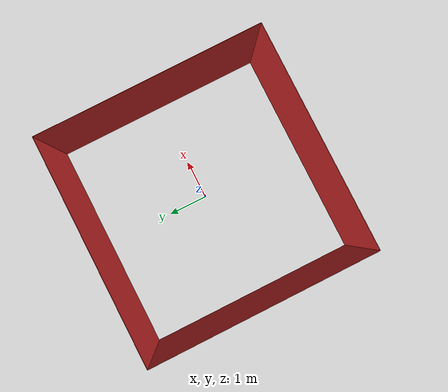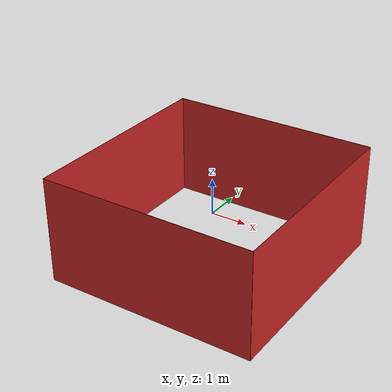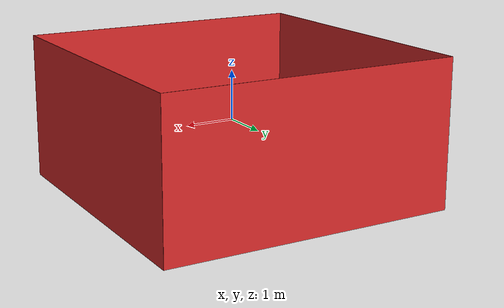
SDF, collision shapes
<sdf version='1.5'>
    <!-- Draw Circle -->
    <model name='ros_symbol'>
      <static>1</static>
      <link name='symbol'>

      <visual name='obs_bucket'>
      <pose>2 2 0 0 0 0</pose>
        <geometry>
          <mesh>
            <uri>model://turtlebot3_world/meshes/aws_robomaker_warehouse_Bucket_01_visual.DAE</uri>
          </mesh>
        </geometry>
      </visual>

      <visual name="obs_clutter_d1">
      <pose>-2 -2 -0.319559 0 0 0</pose>
	 <geometry>
       <mesh>
          <uri>model://turtlebot3_world/meshes/aws_robomaker_warehouse_ClutteringD_01_visual.DAE</uri>
        </mesh>
        </geometry>
	</visual>

	<visual name="obs_trash">
	<pose>-1 1.8 0 0 0 0</pose>
	 <geometry>
          <mesh>
            <uri>model://turtlebot3_world/meshes/aws_robomaker_warehouse_TrashCanC_01_visual.DAE</uri>
          </mesh>
        </geometry>
      <meta> <layer> 1 </layer></meta>
	</visual>

	<visual name="obs_clutter_c1">
	<pose>1 -1.8 0 0 0 0</pose>
	    <geometry>
          <mesh>
            <uri>model://turtlebot3_world/meshes/aws_robomaker_warehouse_ClutteringC_01_visual.DAE</uri>
          </mesh>
        </geometry>
      </visual>

      <visual name="visual">
      <pose>2 0 0 0 0 0</pose>
	 <geometry>
          <mesh>
            <uri>model://turtlebot3_world/meshes/aws_robomaker_warehouse_PalletJackB_01_visual.DAE</uri>
          </mesh>
        </geometry>
	</visual>

      	<visual name='goal_1'>
          <pose>-2 2 0 0 0 0</pose>
          <geometry>
            <cylinder>
              <radius>0.08</radius>
              <length>0.01</length>
            </cylinder>
          </geometry>
          <material>
            <script>
              <uri>file://media/materials/scripts/gazebo.material</uri>
              <name>Gazebo/Red</name>
            </script>
          </material>
        </visual>

        <visual name='goal_2'>
          <pose>-0.1 -0.7 0 0 0 0</pose>
          <geometry>
            <cylinder>
              <radius>0.08</radius>
              <length>0.01</length>
            </cylinder>
          </geometry>
          <material>
            <script>
              <uri>file://media/materials/scripts/gazebo.material</uri>
              <name>Gazebo/Red</name>
            </script>
          </material>
        </visual>

        <visual name='goal_3'>
          <pose>-1 -1 0 0 0 0</pose>
          <geometry>
            <cylinder>
              <radius>0.08</radius>
              <length>0.01</length>
            </cylinder>
          </geometry>
          <material>
            <script>
              <uri>file://media/materials/scripts/gazebo.material</uri>
              <name>Gazebo/Red</name>
            </script>
          </material>
        </visual>

	<!-- Draw Walls -->
      	<collision name="wall_1">
      	<pose>3 0 0 0 0 0</pose>
        <geometry>
          <box>
            <size>0.01 6.0 3.0</size>
          </box>
        </geometry>
        <max_contacts>10</max_contacts>
          <surface>
            <bounce/>
            <friction>
              <ode/>
            </friction>
            <contact>
              <ode/>
            </contact>
          </surface>
      </collision>

      <visual name="wall_1">
      <pose>3 0 0 0 0 0</pose>
        <geometry>
          <box>
            <size>0.01 6.0 3.0</size>
          </box>
        </geometry>
        <material>
            <script>
              <uri>file://media/materials/scripts/gazebo.material</uri>
              <name>Gazebo/White</name>
            </script>
        </material>
      </visual>

      <collision name="wall_2">
      	<pose>-3 0 0 0 0 0</pose>
        <geometry>
          <box>
            <size>0.01 6.0 3.0</size>
          </box>
        </geometry>
        <max_contacts>10</max_contacts>
          <surface>
            <bounce/>
            <friction>
              <ode/>
            </friction>
            <contact>
              <ode/>
            </contact>
          </surface>
      </collision>

      <visual name="wall_2">
      	<pose>-3 0 0 0 0 0</pose>
        <geometry>
          <box>
            <size>0.01 6.0 3.0</size>
          </box>
        </geometry>
        <material>
            <script>
              <uri>file://media/materials/scripts/gazebo.material</uri>
              <name>Gazebo/White</name>
            </script>
        </material>
      </visual>

      <collision name="wall_3">
      	<pose>0 3 0 0 0 0</pose>
        <geometry>
          <box>
            <size>6.0 0.01 3.0</size>
          </box>
        </geometry>
        <max_contacts>10</max_contacts>
          <surface>
            <bounce/>
            <friction>
              <ode/>
            </friction>
            <contact>
              <ode/>
            </contact>
          </surface>
      </collision>

      <visual name="wall_3">
      	<pose>0 3 0 0 0 0</pose>
        <geometry>
          <box>
            <size>6.0 0.01 3.0</size>
          </box>
        </geometry>
        <material>
            <script>
              <uri>file://media/materials/scripts/gazebo.material</uri>
              <name>Gazebo/White</name>
            </script>
        </material>
      </visual>

      <collision name="wall_4">
      	<pose>0 -3 0 0 0 0</pose>
        <geometry>
          <box>
            <size>6.0 0.01 3.0</size>
          </box>
        </geometry>
        <max_contacts>10</max_contacts>
          <surface>
            <bounce/>
            <friction>
              <ode/>
            </friction>
            <contact>
              <ode/>
            </contact>
          </surface>
      </collision>

      <visual name="wall_4">
      	<pose>0 -3 0 0 0 0</pose>
        <geometry>
          <box>
            <size>6.0 0.01 3.0</size>
          </box>
        </geometry>
        <material>
            <script>
              <uri>file://media/materials/scripts/gazebo.material</uri>
              <name>Gazebo/White</name>
            </script>
        </material>
      </visual>

    </link>
  </model>
</sdf>
